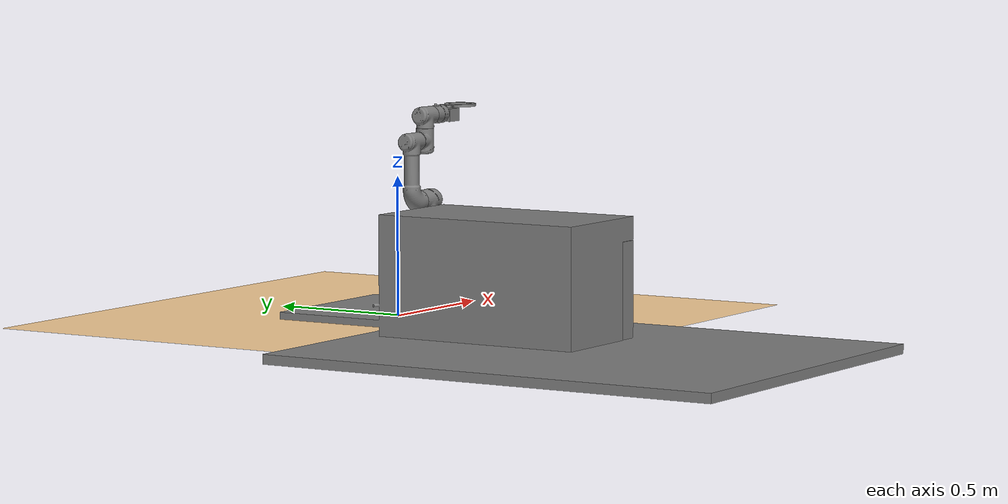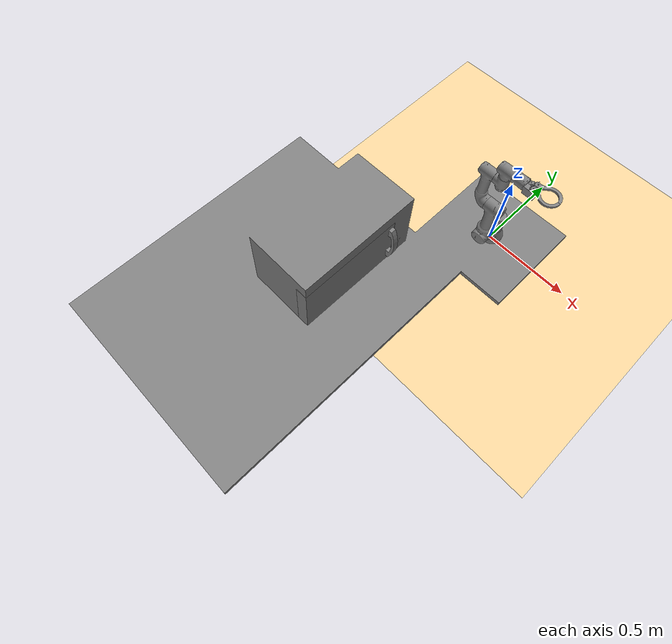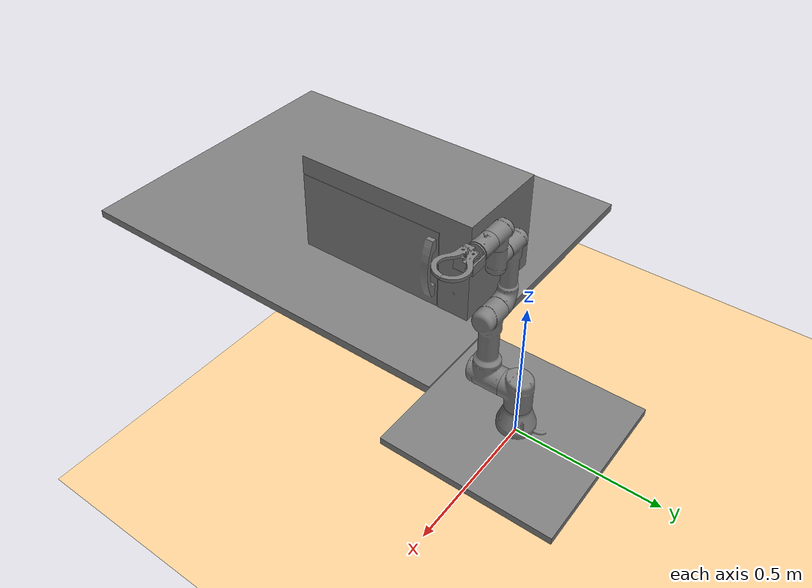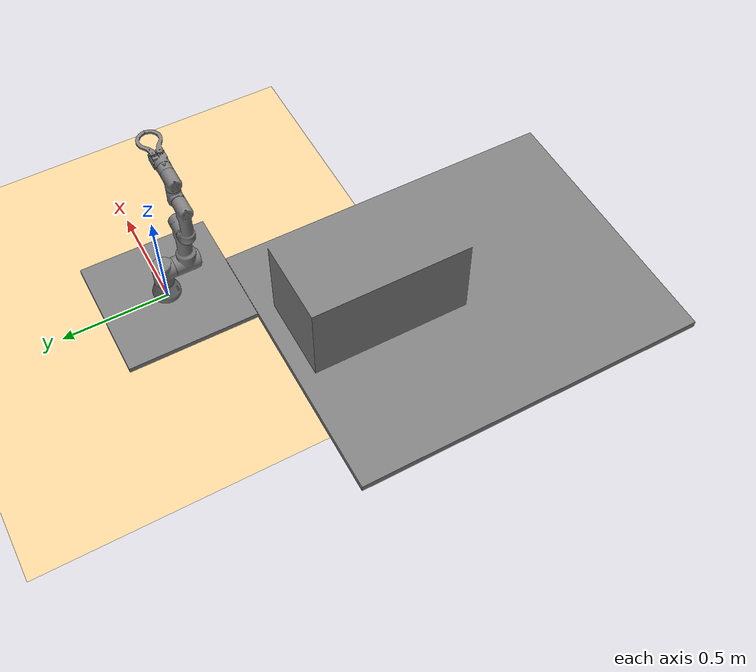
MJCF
<mujoco model="UR3">
    <compiler angle="radian" />
    <asset>
        <mesh name="link1-v4" file="meshes/link1-v4.stl" scale="0.001 0.001 0.001" />
        <mesh name="base_link-v3" file="meshes/base_link-v3.stl" scale="0.001 0.001 0.001" />
        <mesh name="link2-v3" file="meshes/link2-v3.stl" scale="0.001 0.001 0.001" />
        <mesh name="link3-v3" file="meshes/link3-v3.stl" scale="0.001 0.001 0.001" />
        <mesh name="link4-v3" file="meshes/link4-v3.stl" scale="0.001 0.001 0.001" />
        <mesh name="link5-v3" file="meshes/link5-v3.stl" scale="0.001 0.001 0.001" />
        <mesh name="link6-v3" file="meshes/link6-v3.stl" scale="0.001 0.001 0.001" />
        <mesh name="Left_Grip" file="meshes/Left_Grip.stl" scale="0.001 0.001 0.001" />
        <mesh name="Right_Grip" file="meshes/Right_Grip.stl" scale="0.001 0.001 0.001" />
        <mesh name="Door" file="meshes/Door.stl" scale="0.001 0.001 0.001" />
    </asset>
    <worldbody>
        <light directional="true" pos="-0.5 0.5 3" dir="0 0 -1" />
        <geom pos="0 0 0" size="1 1 1" type="plane" rgba="1 0.83 0.61 0.5" />
        <body name="base_link-v3" pos="-7.815158320407879e-16 0.01722310771811039 0.06789999641118911" euler="1.5200514458246762e-16 7.028391405114113e-16 -7.014997688363869e-16">
            <geom name="base_link-v3_geom" type="mesh" mesh="base_link-v3" pos="0 0 0" euler="0 0 0" />
            <inertial mass="1262.2618288508525" pos="-0.5402398621610146 -0.8895005162969064 0.06846508640851184" fullinertia="319.47349657560926 151.81704540196995 410.2684067124868 -51.92911277900437 -1.8267157142938322 -20.66460241756543" />
            <body name="link1-v4" pos="0.00017721710714233585 -0.02119581809949581 0.10461075851854176" euler="1.5713279126393407 1.001341137378472e-15 -5.864639019602619e-16">
                <joint name="base_link-v3_j1" type="hinge" axis="-1.2889400978189644e-15 1.0000001415119044 4.1410542506203126e-07" pos="-0.000136217107141533 -0.060837895381651304 -0.004010370385550103" />
                <geom name="link1-v4_geom" type="mesh" mesh="link1-v4" pos="0 0 0" euler="0 0 0" />
                <inertial mass="0.3149483948341394" pos="-0.0002652338271638842 0.049132603623666324 -0.00923732563322702" fullinertia="0.00023120994782054732 0.00040742337943199957 0.00024406222096013156 -6.830148326541122e-07 9.204290047829193e-07 -5.209320715751602e-05" />
                <body name="link2-v3" pos="0.006294247901650221 0.1220597401976195 0.110930373764038" euler="-1.5707963267948966 -6.768470874919664e-17 -3.141592653589793">
                    <joint name="link1-v4_j2" type="hinge" axis="3.4187444195032947e-16 1.0000001415119044 -4.141054250247347e-07" pos="0.0060874650087918555 -0.060940742889264675 -0.11704492063990748" />
                    <geom name="link2-v3_geom" type="mesh" mesh="link2-v3" pos="0 0 0" euler="0 0 0" />
                    <inertial mass="8.393606609808884" pos="0.0035734055358095976 0.006609948834613911 0.052247493219949634" fullinertia="0.05159083523063959 0.05262580208406281 0.0077648716948884415 -5.210447077515836e-05 0.0016092328510568 0.0024027602235542657" />
                    <body name="link3-v3" pos="0.1005558571423142 0.0029199794744266504 0.2402547302285521" euler="-1.537430973977361 0.04238013883889145 1.6028239938980364">
                        <joint name="link2-v3_j3" type="hinge" axis="-0.03179292567459977 -0.998334907825896 0.04812335416728601" pos="0.11526944514168323 0.04828746610328463 -0.0036622252497880516" />
                        <geom name="link3-v3_geom" type="mesh" mesh="link3-v3" pos="0 0 0" euler="0 0 0" />
                        <inertial mass="7.526132329492665" pos="0.002697801977457159 0.00600645740159372 0.001739382994739837" fullinertia="0.005103753670418879 0.05584573389089698 0.057052325569695375 -0.0029985968034238046 0.001714037463513435 0.0001480332172012595" />
                        <body name="link4-v3" pos="-0.09394264528548839 0.08517827079539464 0.003104782137911446" euler="-0.044918708823939495 0.017473795330266727 -0.07858593549021095">
                            <joint name="link3-v3_j4" type="hinge" axis="-0.0466801496070125 0.9989094651397883 0.00037384463154951003" pos="-0.0008000942484049022 -0.038453066782212435 -0.0019143563709908334" />
                            <geom name="link4-v3_geom" type="mesh" mesh="link4-v3" pos="0 0 0" euler="0 0 0" />
                            <inertial mass="2.545842238140852" pos="-0.0017869411138814418 0.00021015812296798112 -0.0019185778391200628" fullinertia="0.001605181557207053 0.002093426217229627 0.002391020327025471 -1.5967007851733523e-05 1.7044927996070516e-05 5.064283854269504e-07" />
                            <body name="link5-v3" pos="-0.08227103879236118 4.7038623188369045e-05 -0.0009760318154197556" euler="-2.622197027745017 1.490207513311002 2.6303272677564338">
                                <joint name="link4-v3_j5" type="hinge" axis="0.04813268153388546 -0.007095977382246862 -0.998815833429942" pos="-0.002837110941871986 0.002720336118535904 0.036873853408285806" />
                                <geom name="link5-v3_geom" type="mesh" mesh="link5-v3" pos="0 0 0" euler="0 0 0" />
                                <inertial mass="2.545842534539693" pos="-0.0009810150077491488 0.001907092188005187 -0.0017442445659119404" fullinertia="0.0023410122037799313 0.0016046358626508879 0.00204471909767193 -6.292065784448897e-06 1.4479325932616191e-05 1.58767883765228e-05" />
                                <body name="link6-v3" pos="0.0003712756726844724 0.062732144495235 -0.008819264338478518" euler="1.6206642382715735 0.12856522039449575 2.6677995944018904">
                                    <joint name="link5-v3_j6" type="hinge" axis="-0.14666389306905664 -0.011638930895147632 -0.989118372880861" pos="0.0034512935236635854 -0.00018795006317411502 0.017426662117023865" />
                                    <geom name="link6-v3_geom" type="mesh" mesh="link6-v3" pos="0 0 0" euler="0 0 0" />
                                    <inertial mass="2.514608875710969" pos="-0.0034173450650849964 -0.0028923602265742998 -0.04713742240637238" fullinertia="0.004689205158946851 0.004793282848165315 0.0013500750637262234 -0.00011499222724200165 -0.00024679280563782774 -0.00018903876337133136" />
                                    <body name="Left_Grip" pos="-0.0028920768200609358 -0.0005494197618841668 -0.02730684271749295" euler="-1.4980880985706329 -0.517366751832628 -2.9670597283903613">
                                        <joint name="link6-v3_Grip-Driver" type="hinge" axis="-7.901738295515263e-08 -1.1821091312600555e-07 1.0000002520679705" pos="0.01619987163589032 -0.06649982799046604 0.022500022719879307" />
                                        <geom name="Left_Grip_geom" type="mesh" mesh="Left_Grip" pos="0 0 0" euler="0 0 0" />
                                        <inertial mass="0.217026367003884" pos="0.029455054908694586 -0.12865041530667387 0.023692316225595512" fullinertia="0.0004421610099300489 4.940210539014101e-05 0.0004879125423265275 3.5286502567110514e-05 4.6462981783112754e-07 -2.1041578673544226e-06" />
                                    </body>
                                    <body name="Right_Grip" pos="-0.0028681011958032344 -0.0005473446227640011 -0.027147515905335946" euler="-1.4980880985706326 -0.5173667518326286 -2.9670597283903617">
                                        <joint name="link6-v3_Grip-Link" type="hinge" axis="-7.901738471513802e-08 -1.182109113764302e-07 1.0000002520679723" pos="-0.016199700673337706 -0.06649977596346682 0.017500022413175942" />
                                        <geom name="Right_Grip_geom" type="mesh" mesh="Right_Grip" pos="0 0 0" euler="0 0 0" />
                                        <inertial mass="0.23937395946991255" pos="-0.028331985000097062 -0.1239345457011289 0.02347646263565032" fullinertia="0.0004962113899350675 5.2784553711957736e-05 0.000545007379174274 -4.829421538153547e-05 6.374934035707559e-08 3.6397886365416255e-07" />
                                    </body>
                                </body>
                            </body>
                        </body>
                    </body>
                </body>
            </body>
            <body name="Door" pos="-0.3746089691512519 -0.783676222780528 -0.03338749641118897" euler="5.625060218749189e-16 -1.2796422673385683e-16 1.5707963267948972">
                <joint name="base_link-v3_jM" type="hinge" axis="7.115838226387957e-16 8.66307515512804e-16 1.0" pos="-0.3778248849375845 3.084874780443701e-08 0.16522550000000014" />
                <geom name="Door_geom" type="mesh" mesh="Door" pos="0 0 0" euler="0 0 0" />
                <inertial mass="113.97162766322674" pos="-0.06341457521098175 -0.035604245822519996 0.16531556735525063" fullinertia="1.0823810161326683 4.772928355180978 3.791718009580052 0.021868860400764027 -0.0029158881559128926 0.000607468344471756" />
            </body>
        </body>
    </worldbody>
</mujoco>
